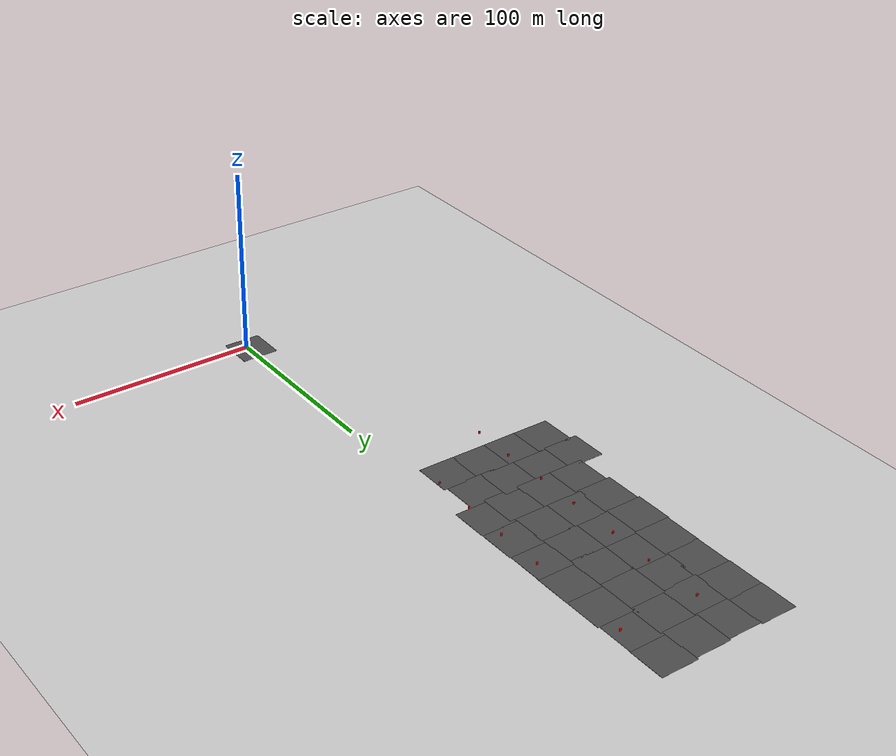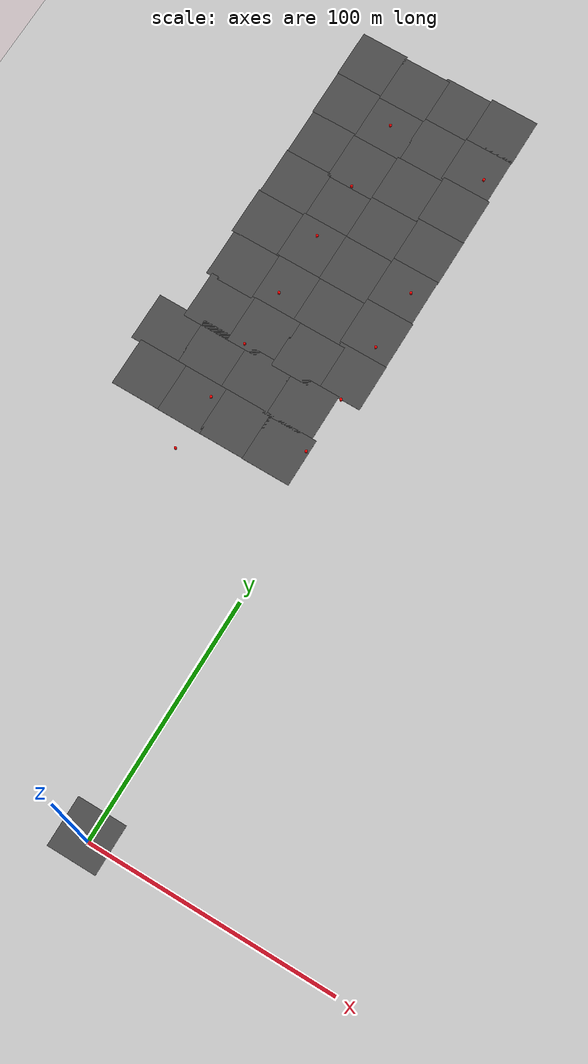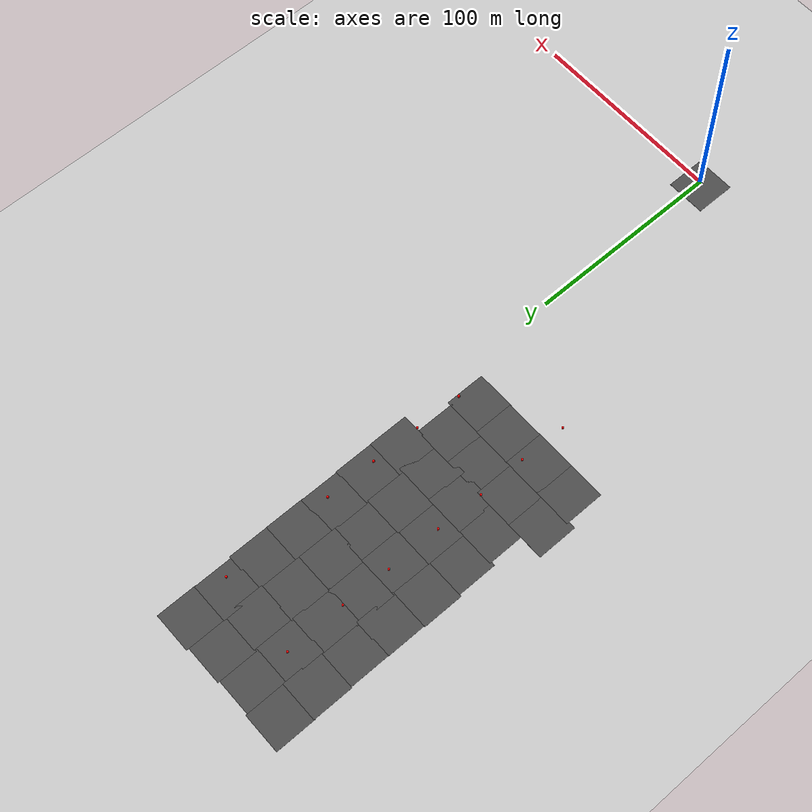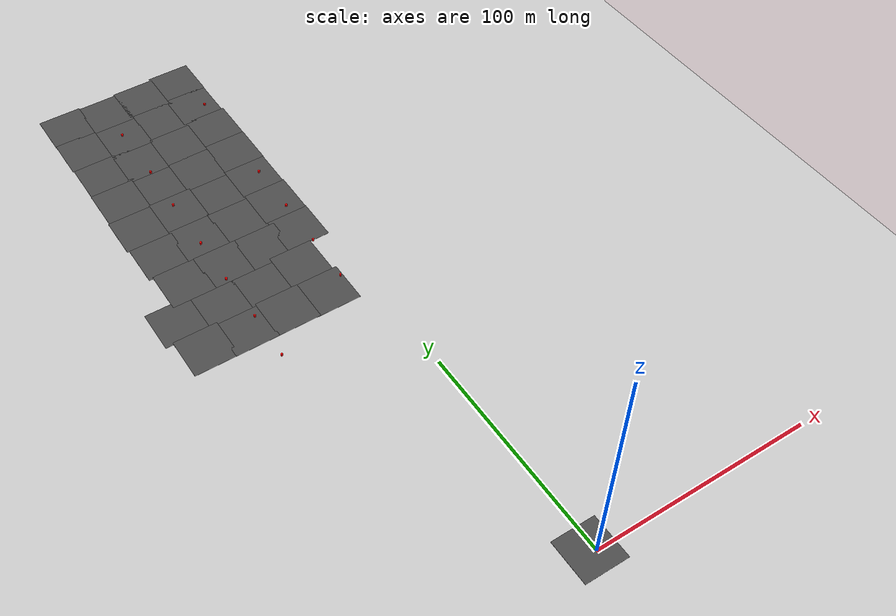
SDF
<sdf version="1.6">
 <world name="default">
  <model name="ground_plane">
   <static>1</static>
   <link name="link">
    <collision name="collision">
     <geometry><plane><normal>0 0 1</normal><size>100 100</size></plane></geometry>
     <surface>
      <contact><collide_bitmask>65535</collide_bitmask></contact>
      <friction><ode><mu>100</mu><mu2>50</mu2></ode></friction>
     </surface>
    </collision>
    <visual name="visual">
     <cast_shadows>0</cast_shadows>
     <geometry><plane><normal>0 0 1</normal><size>100 100</size></plane></geometry>
     <material>
      <script><uri>file://media/materials/scripts/gazebo.material</uri><name>Gazebo/Grey</name></script>
     </material>
    </visual>
   </link>
  </model>
  <model name="asphalt_plane">
   <static>1</static>
   <link name="link">
    <collision name="collision"><geometry><box><size>20 20 0.1</size></box></geometry></collision>
    <visual name="visual">
     <cast_shadows>0</cast_shadows>
     <geometry><box><size>20 20 0.1</size></box></geometry>
     <material>
      <script>
       <uri>model://asphalt_plane/materials/scripts</uri>
       <uri>model://asphalt_plane/materials/textures</uri>
       <name>vrc/asphalt</name>
      </script>
     </material>
    </visual>
   </link>
   <pose>-1.68563 1.69754 0 0 -0 0</pose>
  </model>
  <model name="asphalt_plane_185">
   <static>1</static>
   <link name="link">
    <collision name="collision"><geometry><box><size>20 20 0.1</size></box></geometry></collision>
    <visual name="visual">
     <cast_shadows>0</cast_shadows>
     <geometry><box><size>20 20 0.1</size></box></geometry>
     <material>
      <script>
       <uri>model://asphalt_plane/materials/scripts</uri>
       <uri>model://asphalt_plane/materials/textures</uri>
       <name>vrc/asphalt</name>
      </script>
     </material>
    </visual>
   </link>
   <pose>-74.8777 156.593 0 0 -0 0</pose>
  </model>
  <model name="asphalt_plane_186">
   <static>1</static>
   <link name="link">
    <collision name="collision"><geometry><box><size>20 20 0.1</size></box></geometry></collision>
    <visual name="visual">
     <cast_shadows>0</cast_shadows>
     <geometry><box><size>20 20 0.1</size></box></geometry>
     <material>
      <script>
       <uri>model://asphalt_plane/materials/scripts</uri>
       <uri>model://asphalt_plane/materials/textures</uri>
       <name>vrc/asphalt</name>
      </script>
     </material>
    </visual>
   </link>
   <pose>-56.4148 156.521 0 0 -0 0</pose>
  </model>
  <model name="asphalt_plane_187">
   <static>1</static>
   <link name="link">
    <collision name="collision"><geometry><box><size>20 20 0.1</size></box></geometry></collision>
    <visual name="visual">
     <cast_shadows>0</cast_shadows>
     <geometry><box><size>20 20 0.1</size></box></geometry>
     <material>
      <script>
       <uri>model://asphalt_plane/materials/scripts</uri>
       <uri>model://asphalt_plane/materials/textures</uri>
       <name>vrc/asphalt</name>
      </script>
     </material>
    </visual>
   </link>
   <pose>-37.127 156.551 0 0 -0 0</pose>
  </model>
  <model name="asphalt_plane_219">
   <static>1</static>
   <link name="link">
    <collision name="collision"><geometry><box><size>20 20 0.1</size></box></geometry></collision>
    <visual name="visual">
     <cast_shadows>0</cast_shadows>
     <geometry><box><size>20 20 0.1</size></box></geometry>
     <material>
      <script>
       <uri>model://asphalt_plane/materials/scripts</uri>
       <uri>model://asphalt_plane/materials/textures</uri>
       <name>vrc/asphalt</name>
      </script>
     </material>
    </visual>
   </link>
   <pose>-19.7766 175.525 0 0 -0 0</pose>
  </model>
  <model name="asphalt_plane_220">
   <static>1</static>
   <link name="link">
    <collision name="collision"><geometry><box><size>20 20 0.1</size></box></geometry></collision>
    <visual name="visual">
     <cast_shadows>0</cast_shadows>
     <geometry><box><size>20 20 0.1</size></box></geometry>
     <material>
      <script>
       <uri>model://asphalt_plane/materials/scripts</uri>
       <uri>model://asphalt_plane/materials/textures</uri>
       <name>vrc/asphalt</name>
      </script>
     </material>
    </visual>
   </link>
   <pose>-39.4368 175.506 0 0 -0 0</pose>
  </model>
  <model name="asphalt_plane_221">
   <static>1</static>
   <link name="link">
    <collision name="collision"><geometry><box><size>20 20 0.1</size></box></geometry></collision>
    <visual name="visual">
     <cast_shadows>0</cast_shadows>
     <geometry><box><size>20 20 0.1</size></box></geometry>
     <material>
      <script>
       <uri>model://asphalt_plane/materials/scripts</uri>
       <uri>model://asphalt_plane/materials/textures</uri>
       <name>vrc/asphalt</name>
      </script>
     </material>
    </visual>
   </link>
   <pose>-58.7425 175.479 0 0 -0 0</pose>
  </model>
  <model name="asphalt_plane_222">
   <static>1</static>
   <link name="link">
    <collision name="collision"><geometry><box><size>20 20 0.1</size></box></geometry></collision>
    <visual name="visual">
     <cast_shadows>0</cast_shadows>
     <geometry><box><size>20 20 0.1</size></box></geometry>
     <material>
      <script>
       <uri>model://asphalt_plane/materials/scripts</uri>
       <uri>model://asphalt_plane/materials/textures</uri>
       <name>vrc/asphalt</name>
      </script>
     </material>
    </visual>
   </link>
   <pose>-78.4327 175.472 0 0 -0 0</pose>
  </model>
  <model name="asphalt_plane_323">
   <static>1</static>
   <link name="link">
    <collision name="collision"><geometry><box><size>20 20 0.1</size></box></geometry></collision>
    <visual name="visual">
     <cast_shadows>0</cast_shadows>
     <geometry><box><size>20 20 0.1</size></box></geometry>
     <material>
      <script>
       <uri>model://asphalt_plane/materials/scripts</uri>
       <uri>model://asphalt_plane/materials/textures</uri>
       <name>vrc/asphalt</name>
      </script>
     </material>
    </visual>
   </link>
   <pose>-10.6691 194.93 0 0 -0 0</pose>
  </model>
  <model name="asphalt_plane_324">
   <static>1</static>
   <link name="link">
    <collision name="collision"><geometry><box><size>20 20 0.1</size></box></geometry></collision>
    <visual name="visual">
     <cast_shadows>0</cast_shadows>
     <geometry><box><size>20 20 0.1</size></box></geometry>
     <material>
      <script>
       <uri>model://asphalt_plane/materials/scripts</uri>
       <uri>model://asphalt_plane/materials/textures</uri>
       <name>vrc/asphalt</name>
      </script>
     </material>
    </visual>
   </link>
   <pose>-10.8399 214.645 0 0 -0 0</pose>
  </model>
  <model name="asphalt_plane_325">
   <static>1</static>
   <link name="link">
    <collision name="collision"><geometry><box><size>20 20 0.1</size></box></geometry></collision>
    <visual name="visual">
     <cast_shadows>0</cast_shadows>
     <geometry><box><size>20 20 0.1</size></box></geometry>
     <material>
      <script>
       <uri>model://asphalt_plane/materials/scripts</uri>
       <uri>model://asphalt_plane/materials/textures</uri>
       <name>vrc/asphalt</name>
      </script>
     </material>
    </visual>
   </link>
   <pose>-27.9609 193.208 0 0 -0 0</pose>
  </model>
  <model name="asphalt_plane_326">
   <static>1</static>
   <link name="link">
    <collision name="collision"><geometry><box><size>20 20 0.1</size></box></geometry></collision>
    <visual name="visual">
     <cast_shadows>0</cast_shadows>
     <geometry><box><size>20 20 0.1</size></box></geometry>
     <material>
      <script>
       <uri>model://asphalt_plane/materials/scripts</uri>
       <uri>model://asphalt_plane/materials/textures</uri>
       <name>vrc/asphalt</name>
      </script>
     </material>
    </visual>
   </link>
   <pose>-30.2775 213.086 0 0 -0 0</pose>
  </model>
  <model name="asphalt_plane_327">
   <static>1</static>
   <link name="link">
    <collision name="collision"><geometry><box><size>20 20 0.1</size></box></geometry></collision>
    <visual name="visual">
     <cast_shadows>0</cast_shadows>
     <geometry><box><size>20 20 0.1</size></box></geometry>
     <material>
      <script>
       <uri>model://asphalt_plane/materials/scripts</uri>
       <uri>model://asphalt_plane/materials/textures</uri>
       <name>vrc/asphalt</name>
      </script>
     </material>
    </visual>
   </link>
   <pose>-47.2966 193.23 0 0 -0 0</pose>
  </model>
  <model name="asphalt_plane_328">
   <static>1</static>
   <link name="link">
    <collision name="collision"><geometry><box><size>20 20 0.1</size></box></geometry></collision>
    <visual name="visual">
     <cast_shadows>0</cast_shadows>
     <geometry><box><size>20 20 0.1</size></box></geometry>
     <material>
      <script>
       <uri>model://asphalt_plane/materials/scripts</uri>
       <uri>model://asphalt_plane/materials/textures</uri>
       <name>vrc/asphalt</name>
      </script>
     </material>
    </visual>
   </link>
   <pose>-66.4254 193.163 0 0 -0 0</pose>
  </model>
  <model name="asphalt_plane_329">
   <static>1</static>
   <link name="link">
    <collision name="collision"><geometry><box><size>20 20 0.1</size></box></geometry></collision>
    <visual name="visual">
     <cast_shadows>0</cast_shadows>
     <geometry><box><size>20 20 0.1</size></box></geometry>
     <material>
      <script>
       <uri>model://asphalt_plane/materials/scripts</uri>
       <uri>model://asphalt_plane/materials/textures</uri>
       <name>vrc/asphalt</name>
      </script>
     </material>
    </visual>
   </link>
   <pose>-49.5208 213.002 0 0 -0 0</pose>
  </model>
  <model name="asphalt_plane_335">
   <static>1</static>
   <link name="link">
    <collision name="collision"><geometry><box><size>20 20 0.1</size></box></geometry></collision>
    <visual name="visual">
     <cast_shadows>0</cast_shadows>
     <geometry><box><size>20 20 0.1</size></box></geometry>
     <material>
      <script>
       <uri>model://asphalt_plane/materials/scripts</uri>
       <uri>model://asphalt_plane/materials/textures</uri>
       <name>vrc/asphalt</name>
      </script>
     </material>
    </visual>
   </link>
   <pose>-11.2759 234.109 0 0 -0 0</pose>
  </model>
  <model name="asphalt_plane_336">
   <static>1</static>
   <link name="link">
    <collision name="collision"><geometry><box><size>20 20 0.1</size></box></geometry></collision>
    <visual name="visual">
     <cast_shadows>0</cast_shadows>
     <geometry><box><size>20 20 0.1</size></box></geometry>
     <material>
      <script>
       <uri>model://asphalt_plane/materials/scripts</uri>
       <uri>model://asphalt_plane/materials/textures</uri>
       <name>vrc/asphalt</name>
      </script>
     </material>
    </visual>
   </link>
   <pose>-11.0698 253.248 0 0 -0 0</pose>
  </model>
  <model name="asphalt_plane_337">
   <static>1</static>
   <link name="link">
    <collision name="collision"><geometry><box><size>20 20 0.1</size></box></geometry></collision>
    <visual name="visual">
     <cast_shadows>0</cast_shadows>
     <geometry><box><size>20 20 0.1</size></box></geometry>
     <material>
      <script>
       <uri>model://asphalt_plane/materials/scripts</uri>
       <uri>model://asphalt_plane/materials/textures</uri>
       <name>vrc/asphalt</name>
      </script>
     </material>
    </visual>
   </link>
   <pose>-11.1493 273.105 0 0 -0 0</pose>
  </model>
  <model name="asphalt_plane_338">
   <static>1</static>
   <link name="link">
    <collision name="collision"><geometry><box><size>20 20 0.1</size></box></geometry></collision>
    <visual name="visual">
     <cast_shadows>0</cast_shadows>
     <geometry><box><size>20 20 0.1</size></box></geometry>
     <material>
      <script>
       <uri>model://asphalt_plane/materials/scripts</uri>
       <uri>model://asphalt_plane/materials/textures</uri>
       <name>vrc/asphalt</name>
      </script>
     </material>
    </visual>
   </link>
   <pose>-12.0069 292.225 0 0 -0 0</pose>
  </model>
  <model name="asphalt_plane_339">
   <static>1</static>
   <link name="link">
    <collision name="collision"><geometry><box><size>20 20 0.1</size></box></geometry></collision>
    <visual name="visual">
     <cast_shadows>0</cast_shadows>
     <geometry><box><size>20 20 0.1</size></box></geometry>
     <material>
      <script>
       <uri>model://asphalt_plane/materials/scripts</uri>
       <uri>model://asphalt_plane/materials/textures</uri>
       <name>vrc/asphalt</name>
      </script>
     </material>
    </visual>
   </link>
   <pose>-11.7884 311.494 0 0 -0 0</pose>
  </model>
  <model name="asphalt_plane_340">
   <static>1</static>
   <link name="link">
    <collision name="collision"><geometry><box><size>20 20 0.1</size></box></geometry></collision>
    <visual name="visual">
     <cast_shadows>0</cast_shadows>
     <geometry><box><size>20 20 0.1</size></box></geometry>
     <material>
      <script>
       <uri>model://asphalt_plane/materials/scripts</uri>
       <uri>model://asphalt_plane/materials/textures</uri>
       <name>vrc/asphalt</name>
      </script>
     </material>
    </visual>
   </link>
   <pose>-30.7734 232.45 0 0 -0 0</pose>
  </model>
  <model name="asphalt_plane_341">
   <static>1</static>
   <link name="link">
    <collision name="collision"><geometry><box><size>20 20 0.1</size></box></geometry></collision>
    <visual name="visual">
     <cast_shadows>0</cast_shadows>
     <geometry><box><size>20 20 0.1</size></box></geometry>
     <material>
      <script>
       <uri>model://asphalt_plane/materials/scripts</uri>
       <uri>model://asphalt_plane/materials/textures</uri>
       <name>vrc/asphalt</name>
      </script>
     </material>
    </visual>
   </link>
   <pose>-30.6832 251.51 0 0 -0 0</pose>
  </model>
  <model name="asphalt_plane_342">
   <static>1</static>
   <link name="link">
    <collision name="collision"><geometry><box><size>20 20 0.1</size></box></geometry></collision>
    <visual name="visual">
     <cast_shadows>0</cast_shadows>
     <geometry><box><size>20 20 0.1</size></box></geometry>
     <material>
      <script>
       <uri>model://asphalt_plane/materials/scripts</uri>
       <uri>model://asphalt_plane/materials/textures</uri>
       <name>vrc/asphalt</name>
      </script>
     </material>
    </visual>
   </link>
   <pose>-30.7044 271.247 0 0 -0 0</pose>
  </model>
  <model name="asphalt_plane_343">
   <static>1</static>
   <link name="link">
    <collision name="collision"><geometry><box><size>20 20 0.1</size></box></geometry></collision>
    <visual name="visual">
     <cast_shadows>0</cast_shadows>
     <geometry><box><size>20 20 0.1</size></box></geometry>
     <material>
      <script>
       <uri>model://asphalt_plane/materials/scripts</uri>
       <uri>model://asphalt_plane/materials/textures</uri>
       <name>vrc/asphalt</name>
      </script>
     </material>
    </visual>
   </link>
   <pose>-30.1352 290.792 0 0 -0 0</pose>
  </model>
  <model name="asphalt_plane_344">
   <static>1</static>
   <link name="link">
    <collision name="collision"><geometry><box><size>20 20 0.1</size></box></geometry></collision>
    <visual name="visual">
     <cast_shadows>0</cast_shadows>
     <geometry><box><size>20 20 0.1</size></box></geometry>
     <material>
      <script>
       <uri>model://asphalt_plane/materials/scripts</uri>
       <uri>model://asphalt_plane/materials/textures</uri>
       <name>vrc/asphalt</name>
      </script>
     </material>
    </visual>
   </link>
   <pose>-31.1876 310.296 0 0 -0 0</pose>
  </model>
  <model name="asphalt_plane_345">
   <static>1</static>
   <link name="link">
    <collision name="collision"><geometry><box><size>20 20 0.1</size></box></geometry></collision>
    <visual name="visual">
     <cast_shadows>0</cast_shadows>
     <geometry><box><size>20 20 0.1</size></box></geometry>
     <material>
      <script>
       <uri>model://asphalt_plane/materials/scripts</uri>
       <uri>model://asphalt_plane/materials/textures</uri>
       <name>vrc/asphalt</name>
      </script>
     </material>
    </visual>
   </link>
   <pose>-49.4014 232.557 0 0 -0 0</pose>
  </model>
  <model name="asphalt_plane_346">
   <static>1</static>
   <link name="link">
    <collision name="collision"><geometry><box><size>20 20 0.1</size></box></geometry></collision>
    <visual name="visual">
     <cast_shadows>0</cast_shadows>
     <geometry><box><size>20 20 0.1</size></box></geometry>
     <material>
      <script>
       <uri>model://asphalt_plane/materials/scripts</uri>
       <uri>model://asphalt_plane/materials/textures</uri>
       <name>vrc/asphalt</name>
      </script>
     </material>
    </visual>
   </link>
   <pose>-50.3949 252.429 0 0 -0 0</pose>
  </model>
  <model name="asphalt_plane_347">
   <static>1</static>
   <link name="link">
    <collision name="collision"><geometry><box><size>20 20 0.1</size></box></geometry></collision>
    <visual name="visual">
     <cast_shadows>0</cast_shadows>
     <geometry><box><size>20 20 0.1</size></box></geometry>
     <material>
      <script>
       <uri>model://asphalt_plane/materials/scripts</uri>
       <uri>model://asphalt_plane/materials/textures</uri>
       <name>vrc/asphalt</name>
      </script>
     </material>
    </visual>
   </link>
   <pose>-49.9826 270.446 0 0 -0 0</pose>
  </model>
  <model name="asphalt_plane_348">
   <static>1</static>
   <link name="link">
    <collision name="collision"><geometry><box><size>20 20 0.1</size></box></geometry></collision>
    <visual name="visual">
     <cast_shadows>0</cast_shadows>
     <geometry><box><size>20 20 0.1</size></box></geometry>
     <material>
      <script>
       <uri>model://asphalt_plane/materials/scripts</uri>
       <uri>model://asphalt_plane/materials/textures</uri>
       <name>vrc/asphalt</name>
      </script>
     </material>
    </visual>
   </link>
   <pose>-49.7239 289.733 0 0 -0 0</pose>
  </model>
  <model name="asphalt_plane_349">
   <static>1</static>
   <link name="link">
    <collision name="collision"><geometry><box><size>20 20 0.1</size></box></geometry></collision>
    <visual name="visual">
     <cast_shadows>0</cast_shadows>
     <geometry><box><size>20 20 0.1</size></box></geometry>
     <material>
      <script>
       <uri>model://asphalt_plane/materials/scripts</uri>
       <uri>model://asphalt_plane/materials/textures</uri>
       <name>vrc/asphalt</name>
      </script>
     </material>
    </visual>
   </link>
   <pose>-49.7699 309.423 0 0 -0 0</pose>
  </model>
  <model name="asphalt_plane_350">
   <static>1</static>
   <link name="link">
    <collision name="collision"><geometry><box><size>20 20 0.1</size></box></geometry></collision>
    <visual name="visual">
     <cast_shadows>0</cast_shadows>
     <geometry><box><size>20 20 0.1</size></box></geometry>
     <material>
      <script>
       <uri>model://asphalt_plane/materials/scripts</uri>
       <uri>model://asphalt_plane/materials/textures</uri>
       <name>vrc/asphalt</name>
      </script>
     </material>
    </visual>
   </link>
   <pose>-68.3092 212.118 0 0 -0 0</pose>
  </model>
  <model name="asphalt_plane_351">
   <static>1</static>
   <link name="link">
    <collision name="collision"><geometry><box><size>20 20 0.1</size></box></geometry></collision>
    <visual name="visual">
     <cast_shadows>0</cast_shadows>
     <geometry><box><size>20 20 0.1</size></box></geometry>
     <material>
      <script>
       <uri>model://asphalt_plane/materials/scripts</uri>
       <uri>model://asphalt_plane/materials/textures</uri>
       <name>vrc/asphalt</name>
      </script>
     </material>
    </visual>
   </link>
   <pose>-69.2596 231.863 0 0 -0 0</pose>
  </model>
  <model name="asphalt_plane_352">
   <static>1</static>
   <link name="link">
    <collision name="collision"><geometry><box><size>20 20 0.1</size></box></geometry></collision>
    <visual name="visual">
     <cast_shadows>0</cast_shadows>
     <geometry><box><size>20 20 0.1</size></box></geometry>
     <material>
      <script>
       <uri>model://asphalt_plane/materials/scripts</uri>
       <uri>model://asphalt_plane/materials/textures</uri>
       <name>vrc/asphalt</name>
      </script>
     </material>
    </visual>
   </link>
   <pose>-68.7781 251.644 0 0 -0 0</pose>
  </model>
  <model name="asphalt_plane_353">
   <static>1</static>
   <link name="link">
    <collision name="collision"><geometry><box><size>20 20 0.1</size></box></geometry></collision>
    <visual name="visual">
     <cast_shadows>0</cast_shadows>
     <geometry><box><size>20 20 0.1</size></box></geometry>
     <material>
      <script>
       <uri>model://asphalt_plane/materials/scripts</uri>
       <uri>model://asphalt_plane/materials/textures</uri>
       <name>vrc/asphalt</name>
      </script>
     </material>
    </visual>
   </link>
   <pose>-68.6054 271.021 0 0 -0 0</pose>
  </model>
  <model name="asphalt_plane_354">
   <static>1</static>
   <link name="link">
    <collision name="collision"><geometry><box><size>20 20 0.1</size></box></geometry></collision>
    <visual name="visual">
     <cast_shadows>0</cast_shadows>
     <geometry><box><size>20 20 0.1</size></box></geometry>
     <material>
      <script>
       <uri>model://asphalt_plane/materials/scripts</uri>
       <uri>model://asphalt_plane/materials/textures</uri>
       <name>vrc/asphalt</name>
      </script>
     </material>
    </visual>
   </link>
   <pose>-69.0244 290.901 0 0 -0 0</pose>
  </model>
  <model name="asphalt_plane_355">
   <static>1</static>
   <link name="link">
    <collision name="collision"><geometry><box><size>20 20 0.1</size></box></geometry></collision>
    <visual name="visual">
     <cast_shadows>0</cast_shadows>
     <geometry><box><size>20 20 0.1</size></box></geometry>
     <material>
      <script>
       <uri>model://asphalt_plane/materials/scripts</uri>
       <uri>model://asphalt_plane/materials/textures</uri>
       <name>vrc/asphalt</name>
      </script>
     </material>
    </visual>
   </link>
   <pose>-69.2117 310.258 0 0 -0 0</pose>
  </model>
  <model name="asphalt_plane_356">
   <static>1</static>
   <link name="link">
    <collision name="collision"><geometry><box><size>20 20 0.1</size></box></geometry></collision>
    <visual name="visual">
     <cast_shadows>0</cast_shadows>
     <geometry><box><size>20 20 0.1</size></box></geometry>
     <material>
      <script>
       <uri>model://asphalt_plane/materials/scripts</uri>
       <uri>model://asphalt_plane/materials/textures</uri>
       <name>vrc/asphalt</name>
      </script>
     </material>
    </visual>
   </link>
   <pose>-18.0178 156.413 0 0 -0 0</pose>
  </model>
  <model name="station_78">
   <link name="link">
    <inertial>
     <mass>1</mass>
     <inertia><ixx>0.145833</ixx><ixy>0</ixy><ixz>0</ixz><iyy>0.145833</iyy><iyz>0</iyz><izz>0.125</izz></inertia>
    </inertial>
    <visual name="visual">
     <geometry><cylinder><radius>0.5</radius><length>1</length></cylinder></geometry>
     <material>
      <script><name>Gazebo/Grey</name><uri>file://media/materials/scripts/gazebo.material</uri></script>
      <shader type="vertex"><normal_map>__default__</normal_map></shader>
      <ambient>1 0 0 0</ambient>
      <diffuse>0 0 0 1</diffuse>
      <specular>0.91 0.01 0.01 1</specular>
      <emissive>0 0 0 1</emissive>
     </material>
    </visual>
    <collision name="collision">
     <geometry><cylinder><radius>0.5</radius><length>1</length></cylinder></geometry>
     <surface>
      <friction>
       <ode><mu>1</mu><mu2>1</mu2><fdir1>0 0 0</fdir1><slip1>0</slip1><slip2>0</slip2></ode>
       <torsional>
        <coefficient>1</coefficient>
        <patch_radius>0</patch_radius>
        <surface_radius>0</surface_radius>
        <use_patch_radius>1</use_patch_radius>
        <ode><slip>0</slip></ode>
       </torsional>
      </friction>
      <bounce><restitution_coefficient>0</restitution_coefficient><threshold>1e+06</threshold></bounce>
      <contact>
       <collide_without_contact>0</collide_without_contact>
       <collide_without_contact_bitmask>1</collide_without_contact_bitmask>
       <collide_bitmask>1</collide_bitmask>
       <ode>
        <soft_cfm>0</soft_cfm>
        <soft_erp>0.2</soft_erp>
        <kp>1e+13</kp>
        <kd>1</kd>
        <max_vel>0.01</max_vel>
        <min_depth>0</min_depth>
       </ode>
       <bullet>
        <split_impulse>1</split_impulse>
        <split_impulse_penetration_threshold>-0.01</split_impulse_penetration_threshold>
        <soft_cfm>0</soft_cfm>
        <soft_erp>0.2</soft_erp>
        <kp>1e+13</kp>
        <kd>1</kd>
       </bullet>
      </contact>
     </surface>
    </collision>
   </link>
   <static>1</static>
   <pose>-7.55558 289.679 0.619557 0 -0 0</pose>
  </model>
  <model name="station_80">
   <link name="link">
    <inertial>
     <mass>1</mass>
     <inertia><ixx>0.145833</ixx><ixy>0</ixy><ixz>0</ixz><iyy>0.145833</iyy><iyz>0</iyz><izz>0.125</izz></inertia>
    </inertial>
    <visual name="visual">
     <geometry><cylinder><radius>0.5</radius><length>1</length></cylinder></geometry>
     <material>
      <script><name>Gazebo/Grey</name><uri>file://media/materials/scripts/gazebo.material</uri></script>
      <shader type="vertex"><normal_map>__default__</normal_map></shader>
      <ambient>1 0 0 0</ambient>
      <diffuse>0 0 0 1</diffuse>
      <specular>0.91 0.01 0.01 1</specular>
      <emissive>0 0 0 1</emissive>
     </material>
    </visual>
    <collision name="collision">
     <geometry><cylinder><radius>0.5</radius><length>1</length></cylinder></geometry>
     <surface>
      <friction>
       <ode><mu>1</mu><mu2>1</mu2><fdir1>0 0 0</fdir1><slip1>0</slip1><slip2>0</slip2></ode>
       <torsional>
        <coefficient>1</coefficient>
        <patch_radius>0</patch_radius>
        <surface_radius>0</surface_radius>
        <use_patch_radius>1</use_patch_radius>
        <ode><slip>0</slip></ode>
       </torsional>
      </friction>
      <bounce><restitution_coefficient>0</restitution_coefficient><threshold>1e+06</threshold></bounce>
      <contact>
       <collide_without_contact>0</collide_without_contact>
       <collide_without_contact_bitmask>1</collide_without_contact_bitmask>
       <collide_bitmask>1</collide_bitmask>
       <ode>
        <soft_cfm>0</soft_cfm>
        <soft_erp>0.2</soft_erp>
        <kp>1e+13</kp>
        <kd>1</kd>
        <max_vel>0.01</max_vel>
        <min_depth>0</min_depth>
       </ode>
       <bullet>
        <split_impulse>1</split_impulse>
        <split_impulse_penetration_threshold>-0.01</split_impulse_penetration_threshold>
        <soft_cfm>0</soft_cfm>
        <soft_erp>0.2</soft_erp>
        <kp>1e+13</kp>
        <kd>1</kd>
       </bullet>
      </contact>
     </surface>
    </collision>
   </link>
   <static>1</static>
   <pose>-7.83566 234.854 0.619557 0 -0 0</pose>
  </model>
  <model name="station_81">
   <link name="link">
    <inertial>
     <mass>1</mass>
     <inertia><ixx>0.145833</ixx><ixy>0</ixy><ixz>0</ixz><iyy>0.145833</iyy><iyz>0</iyz><izz>0.125</izz></inertia>
    </inertial>
    <visual name="visual">
     <geometry><cylinder><radius>0.5</radius><length>1</length></cylinder></geometry>
     <material>
      <script><name>Gazebo/Grey</name><uri>file://media/materials/scripts/gazebo.material</uri></script>
      <shader type="vertex"><normal_map>__default__</normal_map></shader>
      <ambient>1 0 0 0</ambient>
      <diffuse>0 0 0 1</diffuse>
      <specular>0.91 0.01 0.01 1</specular>
      <emissive>0 0 0 1</emissive>
     </material>
    </visual>
    <collision name="collision">
     <geometry><cylinder><radius>0.5</radius><length>1</length></cylinder></geometry>
     <surface>
      <friction>
       <ode><mu>1</mu><mu2>1</mu2><fdir1>0 0 0</fdir1><slip1>0</slip1><slip2>0</slip2></ode>
       <torsional>
        <coefficient>1</coefficient>
        <patch_radius>0</patch_radius>
        <surface_radius>0</surface_radius>
        <use_patch_radius>1</use_patch_radius>
        <ode><slip>0</slip></ode>
       </torsional>
      </friction>
      <bounce><restitution_coefficient>0</restitution_coefficient><threshold>1e+06</threshold></bounce>
      <contact>
       <collide_without_contact>0</collide_without_contact>
       <collide_without_contact_bitmask>1</collide_without_contact_bitmask>
       <collide_bitmask>1</collide_bitmask>
       <ode>
        <soft_cfm>0</soft_cfm>
        <soft_erp>0.2</soft_erp>
        <kp>1e+13</kp>
        <kd>1</kd>
        <max_vel>0.01</max_vel>
        <min_depth>0</min_depth>
       </ode>
       <bullet>
        <split_impulse>1</split_impulse>
        <split_impulse_penetration_threshold>-0.01</split_impulse_penetration_threshold>
        <soft_cfm>0</soft_cfm>
        <soft_erp>0.2</soft_erp>
        <kp>1e+13</kp>
        <kd>1</kd>
       </bullet>
      </contact>
     </surface>
    </collision>
   </link>
   <static>1</static>
   <pose>-8.05908 209.269 0.619557 0 -0 0</pose>
  </model>
  <model name="station_82">
   <link name="link">
    <inertial>
     <mass>1</mass>
     <inertia><ixx>0.145833</ixx><ixy>0</ixy><ixz>0</ixz><iyy>0.145833</iyy><iyz>0</iyz><izz>0.125</izz></inertia>
    </inertial>
    <visual name="visual">
     <geometry><cylinder><radius>0.5</radius><length>1</length></cylinder></geometry>
     <material>
      <script><name>Gazebo/Grey</name><uri>file://media/materials/scripts/gazebo.material</uri></script>
      <shader type="vertex"><normal_map>__default__</normal_map></shader>
      <ambient>1 0 0 0</ambient>
      <diffuse>0 0 0 1</diffuse>
      <specular>0.91 0.01 0.01 1</specular>
      <emissive>0 0 0 1</emissive>
     </material>
    </visual>
    <collision name="collision">
     <geometry><cylinder><radius>0.5</radius><length>1</length></cylinder></geometry>
     <surface>
      <friction>
       <ode><mu>1</mu><mu2>1</mu2><fdir1>0 0 0</fdir1><slip1>0</slip1><slip2>0</slip2></ode>
       <torsional>
        <coefficient>1</coefficient>
        <patch_radius>0</patch_radius>
        <surface_radius>0</surface_radius>
        <use_patch_radius>1</use_patch_radius>
        <ode><slip>0</slip></ode>
       </torsional>
      </friction>
      <bounce><restitution_coefficient>0</restitution_coefficient><threshold>1e+06</threshold></bounce>
      <contact>
       <collide_without_contact>0</collide_without_contact>
       <collide_without_contact_bitmask>1</collide_without_contact_bitmask>
       <collide_bitmask>1</collide_bitmask>
       <ode>
        <soft_cfm>0</soft_cfm>
        <soft_erp>0.2</soft_erp>
        <kp>1e+13</kp>
        <kd>1</kd>
        <max_vel>0.01</max_vel>
        <min_depth>0</min_depth>
       </ode>
       <bullet>
        <split_impulse>1</split_impulse>
        <split_impulse_penetration_threshold>-0.01</split_impulse_penetration_threshold>
        <soft_cfm>0</soft_cfm>
        <soft_erp>0.2</soft_erp>
        <kp>1e+13</kp>
        <kd>1</kd>
       </bullet>
      </contact>
     </surface>
    </collision>
   </link>
   <static>1</static>
   <pose>-8.56798 184.732 0.619557 0 -0 0</pose>
  </model>
  <model name="station_83">
   <link name="link">
    <inertial>
     <mass>1</mass>
     <inertia><ixx>0.145833</ixx><ixy>0</ixy><ixz>0</ixz><iyy>0.145833</iyy><iyz>0</iyz><izz>0.125</izz></inertia>
    </inertial>
    <visual name="visual">
     <geometry><cylinder><radius>0.5</radius><length>1</length></cylinder></geometry>
     <material>
      <script><name>Gazebo/Grey</name><uri>file://media/materials/scripts/gazebo.material</uri></script>
      <shader type="vertex"><normal_map>__default__</normal_map></shader>
      <ambient>1 0 0 0</ambient>
      <diffuse>0 0 0 1</diffuse>
      <specular>0.91 0.01 0.01 1</specular>
      <emissive>0 0 0 1</emissive>
     </material>
    </visual>
    <collision name="collision">
     <geometry><cylinder><radius>0.5</radius><length>1</length></cylinder></geometry>
     <surface>
      <friction>
       <ode><mu>1</mu><mu2>1</mu2><fdir1>0 0 0</fdir1><slip1>0</slip1><slip2>0</slip2></ode>
       <torsional>
        <coefficient>1</coefficient>
        <patch_radius>0</patch_radius>
        <surface_radius>0</surface_radius>
        <use_patch_radius>1</use_patch_radius>
        <ode><slip>0</slip></ode>
       </torsional>
      </friction>
      <bounce><restitution_coefficient>0</restitution_coefficient><threshold>1e+06</threshold></bounce>
      <contact>
       <collide_without_contact>0</collide_without_contact>
       <collide_without_contact_bitmask>1</collide_without_contact_bitmask>
       <collide_bitmask>1</collide_bitmask>
       <ode>
        <soft_cfm>0</soft_cfm>
        <soft_erp>0.2</soft_erp>
        <kp>1e+13</kp>
        <kd>1</kd>
        <max_vel>0.01</max_vel>
        <min_depth>0</min_depth>
       </ode>
       <bullet>
        <split_impulse>1</split_impulse>
        <split_impulse_penetration_threshold>-0.01</split_impulse_penetration_threshold>
        <soft_cfm>0</soft_cfm>
        <soft_erp>0.2</soft_erp>
        <kp>1e+13</kp>
        <kd>1</kd>
       </bullet>
      </contact>
     </surface>
    </collision>
   </link>
   <static>1</static>
   <pose>-9.14025 160.855 0.619557 0 -0 0</pose>
  </model>
  <model name="station_93">
   <link name="link">
    <inertial>
     <mass>1</mass>
     <inertia><ixx>0.145833</ixx><ixy>0</ixy><ixz>0</ixz><iyy>0.145833</iyy><iyz>0</iyz><izz>0.125</izz></inertia>
    </inertial>
    <visual name="visual">
     <geometry><cylinder><radius>0.5</radius><length>1</length></cylinder></geometry>
     <material>
      <script><name>Gazebo/Grey</name><uri>file://media/materials/scripts/gazebo.material</uri></script>
      <shader type="vertex"><normal_map>__default__</normal_map></shader>
      <ambient>1 0 0 0</ambient>
      <diffuse>0 0 0 1</diffuse>
      <specular>0.91 0.01 0.01 1</specular>
      <emissive>0 0 0 1</emissive>
     </material>
    </visual>
    <collision name="collision">
     <geometry><cylinder><radius>0.5</radius><length>1</length></cylinder></geometry>
     <surface>
      <friction>
       <ode><mu>1</mu><mu2>1</mu2><fdir1>0 0 0</fdir1><slip1>0</slip1><slip2>0</slip2></ode>
       <torsional>
        <coefficient>1</coefficient>
        <patch_radius>0</patch_radius>
        <surface_radius>0</surface_radius>
        <use_patch_radius>1</use_patch_radius>
        <ode><slip>0</slip></ode>
       </torsional>
      </friction>
      <bounce><restitution_coefficient>0</restitution_coefficient><threshold>1e+06</threshold></bounce>
      <contact>
       <collide_without_contact>0</collide_without_contact>
       <collide_without_contact_bitmask>1</collide_without_contact_bitmask>
       <collide_bitmask>1</collide_bitmask>
       <ode>
        <soft_cfm>0</soft_cfm>
        <soft_erp>0.2</soft_erp>
        <kp>1e+13</kp>
        <kd>1</kd>
        <max_vel>0.01</max_vel>
        <min_depth>0</min_depth>
       </ode>
       <bullet>
        <split_impulse>1</split_impulse>
        <split_impulse_penetration_threshold>-0.01</split_impulse_penetration_threshold>
        <soft_cfm>0</soft_cfm>
        <soft_erp>0.2</soft_erp>
        <kp>1e+13</kp>
        <kd>1</kd>
       </bullet>
      </contact>
     </surface>
    </collision>
   </link>
   <static>1</static>
   <pose>-50.8721 137.044 0.619557 0 -0 0</pose>
  </model>
  <model name="station_94">
   <link name="link">
    <inertial>
     <mass>1</mass>
     <inertia><ixx>0.145833</ixx><ixy>0</ixy><ixz>0</ixz><iyy>0.145833</iyy><iyz>0</iyz><izz>0.125</izz></inertia>
    </inertial>
    <visual name="visual">
     <geometry><cylinder><radius>0.5</radius><length>1</length></cylinder></geometry>
     <material>
      <script><name>Gazebo/Grey</name><uri>file://media/materials/scripts/gazebo.material</uri></script>
      <shader type="vertex"><normal_map>__default__</normal_map></shader>
      <ambient>1 0 0 0</ambient>
      <diffuse>0 0 0 1</diffuse>
      <specular>0.91 0.01 0.01 1</specular>
      <emissive>0 0 0 1</emissive>
     </material>
    </visual>
    <collision name="collision">
     <geometry><cylinder><radius>0.5</radius><length>1</length></cylinder></geometry>
     <surface>
      <friction>
       <ode><mu>1</mu><mu2>1</mu2><fdir1>0 0 0</fdir1><slip1>0</slip1><slip2>0</slip2></ode>
       <torsional>
        <coefficient>1</coefficient>
        <patch_radius>0</patch_radius>
        <surface_radius>0</surface_radius>
        <use_patch_radius>1</use_patch_radius>
        <ode><slip>0</slip></ode>
       </torsional>
      </friction>
      <bounce><restitution_coefficient>0</restitution_coefficient><threshold>1e+06</threshold></bounce>
      <contact>
       <collide_without_contact>0</collide_without_contact>
       <collide_without_contact_bitmask>1</collide_without_contact_bitmask>
       <collide_bitmask>1</collide_bitmask>
       <ode>
        <soft_cfm>0</soft_cfm>
        <soft_erp>0.2</soft_erp>
        <kp>1e+13</kp>
        <kd>1</kd>
        <max_vel>0.01</max_vel>
        <min_depth>0</min_depth>
       </ode>
       <bullet>
        <split_impulse>1</split_impulse>
        <split_impulse_penetration_threshold>-0.01</split_impulse_penetration_threshold>
        <soft_cfm>0</soft_cfm>
        <soft_erp>0.2</soft_erp>
        <kp>1e+13</kp>
        <kd>1</kd>
       </bullet>
      </contact>
     </surface>
    </collision>
   </link>
   <static>1</static>
   <pose>-50.2906 160.679 0.619557 0 -0 0</pose>
  </model>
  <model name="station_95">
   <link name="link">
    <inertial>
     <mass>1</mass>
     <inertia><ixx>0.145833</ixx><ixy>0</ixy><ixz>0</ixz><iyy>0.145833</iyy><iyz>0</iyz><izz>0.125</izz></inertia>
    </inertial>
    <visual name="visual">
     <geometry><cylinder><radius>0.5</radius><length>1</length></cylinder></geometry>
     <material>
      <script><name>Gazebo/Grey</name><uri>file://media/materials/scripts/gazebo.material</uri></script>
      <shader type="vertex"><normal_map>__default__</normal_map></shader>
      <ambient>1 0 0 0</ambient>
      <diffuse>0 0 0 1</diffuse>
      <specular>0.91 0.01 0.01 1</specular>
      <emissive>0 0 0 1</emissive>
     </material>
    </visual>
    <collision name="collision">
     <geometry><cylinder><radius>0.5</radius><length>1</length></cylinder></geometry>
     <surface>
      <friction>
       <ode><mu>1</mu><mu2>1</mu2><fdir1>0 0 0</fdir1><slip1>0</slip1><slip2>0</slip2></ode>
       <torsional>
        <coefficient>1</coefficient>
        <patch_radius>0</patch_radius>
        <surface_radius>0</surface_radius>
        <use_patch_radius>1</use_patch_radius>
        <ode><slip>0</slip></ode>
       </torsional>
      </friction>
      <bounce><restitution_coefficient>0</restitution_coefficient><threshold>1e+06</threshold></bounce>
      <contact>
       <collide_without_contact>0</collide_without_contact>
       <collide_without_contact_bitmask>1</collide_without_contact_bitmask>
       <collide_bitmask>1</collide_bitmask>
       <ode>
        <soft_cfm>0</soft_cfm>
        <soft_erp>0.2</soft_erp>
        <kp>1e+13</kp>
        <kd>1</kd>
        <max_vel>0.01</max_vel>
        <min_depth>0</min_depth>
       </ode>
       <bullet>
        <split_impulse>1</split_impulse>
        <split_impulse_penetration_threshold>-0.01</split_impulse_penetration_threshold>
        <soft_cfm>0</soft_cfm>
        <soft_erp>0.2</soft_erp>
        <kp>1e+13</kp>
        <kd>1</kd>
       </bullet>
      </contact>
     </surface>
    </collision>
   </link>
   <static>1</static>
   <pose>-50.7131 185.05 0.619557 0 -0 0</pose>
  </model>
  <model name="station_96">
   <link name="link">
    <inertial>
     <mass>1</mass>
     <inertia><ixx>0.145833</ixx><ixy>0</ixy><ixz>0</ixz><iyy>0.145833</iyy><iyz>0</iyz><izz>0.125</izz></inertia>
    </inertial>
    <visual name="visual">
     <geometry><cylinder><radius>0.5</radius><length>1</length></cylinder></geometry>
     <material>
      <script><name>Gazebo/Grey</name><uri>file://media/materials/scripts/gazebo.material</uri></script>
      <shader type="vertex"><normal_map>__default__</normal_map></shader>
      <ambient>1 0 0 0</ambient>
      <diffuse>0 0 0 1</diffuse>
      <specular>0.91 0.01 0.01 1</specular>
      <emissive>0 0 0 1</emissive>
     </material>
    </visual>
    <collision name="collision">
     <geometry><cylinder><radius>0.5</radius><length>1</length></cylinder></geometry>
     <surface>
      <friction>
       <ode><mu>1</mu><mu2>1</mu2><fdir1>0 0 0</fdir1><slip1>0</slip1><slip2>0</slip2></ode>
       <torsional>
        <coefficient>1</coefficient>
        <patch_radius>0</patch_radius>
        <surface_radius>0</surface_radius>
        <use_patch_radius>1</use_patch_radius>
        <ode><slip>0</slip></ode>
       </torsional>
      </friction>
      <bounce><restitution_coefficient>0</restitution_coefficient><threshold>1e+06</threshold></bounce>
      <contact>
       <collide_without_contact>0</collide_without_contact>
       <collide_without_contact_bitmask>1</collide_without_contact_bitmask>
       <collide_bitmask>1</collide_bitmask>
       <ode>
        <soft_cfm>0</soft_cfm>
        <soft_erp>0.2</soft_erp>
        <kp>1e+13</kp>
        <kd>1</kd>
        <max_vel>0.01</max_vel>
        <min_depth>0</min_depth>
       </ode>
       <bullet>
        <split_impulse>1</split_impulse>
        <split_impulse_penetration_threshold>-0.01</split_impulse_penetration_threshold>
        <soft_cfm>0</soft_cfm>
        <soft_erp>0.2</soft_erp>
        <kp>1e+13</kp>
        <kd>1</kd>
       </bullet>
      </contact>
     </surface>
    </collision>
   </link>
   <static>1</static>
   <pose>-50.3744 209.22 0.619557 0 -0 0</pose>
  </model>
  <model name="station_97">
   <link name="link">
    <inertial>
     <mass>1</mass>
     <inertia><ixx>0.145833</ixx><ixy>0</ixy><ixz>0</ixz><iyy>0.145833</iyy><iyz>0</iyz><izz>0.125</izz></inertia>
    </inertial>
    <visual name="visual">
     <geometry><cylinder><radius>0.5</radius><length>1</length></cylinder></geometry>
     <material>
      <script><name>Gazebo/Grey</name><uri>file://media/materials/scripts/gazebo.material</uri></script>
      <shader type="vertex"><normal_map>__default__</normal_map></shader>
      <ambient>1 0 0 0</ambient>
      <diffuse>0 0 0 1</diffuse>
      <specular>0.91 0.01 0.01 1</specular>
      <emissive>0 0 0 1</emissive>
     </material>
    </visual>
    <collision name="collision">
     <geometry><cylinder><radius>0.5</radius><length>1</length></cylinder></geometry>
     <surface>
      <friction>
       <ode><mu>1</mu><mu2>1</mu2><fdir1>0 0 0</fdir1><slip1>0</slip1><slip2>0</slip2></ode>
       <torsional>
        <coefficient>1</coefficient>
        <patch_radius>0</patch_radius>
        <surface_radius>0</surface_radius>
        <use_patch_radius>1</use_patch_radius>
        <ode><slip>0</slip></ode>
       </torsional>
      </friction>
      <bounce><restitution_coefficient>0</restitution_coefficient><threshold>1e+06</threshold></bounce>
      <contact>
       <collide_without_contact>0</collide_without_contact>
       <collide_without_contact_bitmask>1</collide_without_contact_bitmask>
       <collide_bitmask>1</collide_bitmask>
       <ode>
        <soft_cfm>0</soft_cfm>
        <soft_erp>0.2</soft_erp>
        <kp>1e+13</kp>
        <kd>1</kd>
        <max_vel>0.01</max_vel>
        <min_depth>0</min_depth>
       </ode>
       <bullet>
        <split_impulse>1</split_impulse>
        <split_impulse_penetration_threshold>-0.01</split_impulse_penetration_threshold>
        <soft_cfm>0</soft_cfm>
        <soft_erp>0.2</soft_erp>
        <kp>1e+13</kp>
        <kd>1</kd>
       </bullet>
      </contact>
     </surface>
    </collision>
   </link>
   <static>1</static>
   <pose>-50.1779 236.62 0.619557 0 -0 0</pose>
  </model>
  <model name="station_98">
   <link name="link">
    <inertial>
     <mass>1</mass>
     <inertia><ixx>0.145833</ixx><ixy>0</ixy><ixz>0</ixz><iyy>0.145833</iyy><iyz>0</iyz><izz>0.125</izz></inertia>
    </inertial>
    <visual name="visual">
     <geometry><cylinder><radius>0.5</radius><length>1</length></cylinder></geometry>
     <material>
      <script><name>Gazebo/Grey</name><uri>file://media/materials/scripts/gazebo.material</uri></script>
      <shader type="vertex"><normal_map>__default__</normal_map></shader>
      <ambient>1 0 0 0</ambient>
      <diffuse>0 0 0 1</diffuse>
      <specular>0.91 0.01 0.01 1</specular>
      <emissive>0 0 0 1</emissive>
     </material>
    </visual>
    <collision name="collision">
     <geometry><cylinder><radius>0.5</radius><length>1</length></cylinder></geometry>
     <surface>
      <friction>
       <ode><mu>1</mu><mu2>1</mu2><fdir1>0 0 0</fdir1><slip1>0</slip1><slip2>0</slip2></ode>
       <torsional>
        <coefficient>1</coefficient>
        <patch_radius>0</patch_radius>
        <surface_radius>0</surface_radius>
        <use_patch_radius>1</use_patch_radius>
        <ode><slip>0</slip></ode>
       </torsional>
      </friction>
      <bounce><restitution_coefficient>0</restitution_coefficient><threshold>1e+06</threshold></bounce>
      <contact>
       <collide_without_contact>0</collide_without_contact>
       <collide_without_contact_bitmask>1</collide_without_contact_bitmask>
       <collide_bitmask>1</collide_bitmask>
       <ode>
        <soft_cfm>0</soft_cfm>
        <soft_erp>0.2</soft_erp>
        <kp>1e+13</kp>
        <kd>1</kd>
        <max_vel>0.01</max_vel>
        <min_depth>0</min_depth>
       </ode>
       <bullet>
        <split_impulse>1</split_impulse>
        <split_impulse_penetration_threshold>-0.01</split_impulse_penetration_threshold>
        <soft_cfm>0</soft_cfm>
        <soft_erp>0.2</soft_erp>
        <kp>1e+13</kp>
        <kd>1</kd>
       </bullet>
      </contact>
     </surface>
    </collision>
   </link>
   <static>1</static>
   <pose>-49.512 261.145 0.619557 0 -0 0</pose>
  </model>
  <model name="station_99">
   <link name="link">
    <inertial>
     <mass>1</mass>
     <inertia><ixx>0.145833</ixx><ixy>0</ixy><ixz>0</ixz><iyy>0.145833</iyy><iyz>0</iyz><izz>0.125</izz></inertia>
    </inertial>
    <visual name="visual">
     <geometry><cylinder><radius>0.5</radius><length>1</length></cylinder></geometry>
     <material>
      <script><name>Gazebo/Grey</name><uri>file://media/materials/scripts/gazebo.material</uri></script>
      <shader type="vertex"><normal_map>__default__</normal_map></shader>
      <ambient>1 0 0 0</ambient>
      <diffuse>0 0 0 1</diffuse>
      <specular>0.91 0.01 0.01 1</specular>
      <emissive>0 0 0 1</emissive>
     </material>
    </visual>
    <collision name="collision">
     <geometry><cylinder><radius>0.5</radius><length>1</length></cylinder></geometry>
     <surface>
      <friction>
       <ode><mu>1</mu><mu2>1</mu2><fdir1>0 0 0</fdir1><slip1>0</slip1><slip2>0</slip2></ode>
       <torsional>
        <coefficient>1</coefficient>
        <patch_radius>0</patch_radius>
        <surface_radius>0</surface_radius>
        <use_patch_radius>1</use_patch_radius>
        <ode><slip>0</slip></ode>
       </torsional>
      </friction>
      <bounce><restitution_coefficient>0</restitution_coefficient><threshold>1e+06</threshold></bounce>
      <contact>
       <collide_without_contact>0</collide_without_contact>
       <collide_without_contact_bitmask>1</collide_without_contact_bitmask>
       <collide_bitmask>1</collide_bitmask>
       <ode>
        <soft_cfm>0</soft_cfm>
        <soft_erp>0.2</soft_erp>
        <kp>1e+13</kp>
        <kd>1</kd>
        <max_vel>0.01</max_vel>
        <min_depth>0</min_depth>
       </ode>
       <bullet>
        <split_impulse>1</split_impulse>
        <split_impulse_penetration_threshold>-0.01</split_impulse_penetration_threshold>
        <soft_cfm>0</soft_cfm>
        <soft_erp>0.2</soft_erp>
        <kp>1e+13</kp>
        <kd>1</kd>
       </bullet>
      </contact>
     </surface>
    </collision>
   </link>
   <static>1</static>
   <pose>-49.8926 290.989 0.619557 0 -0 0</pose>
  </model>
 </world>
</sdf>
